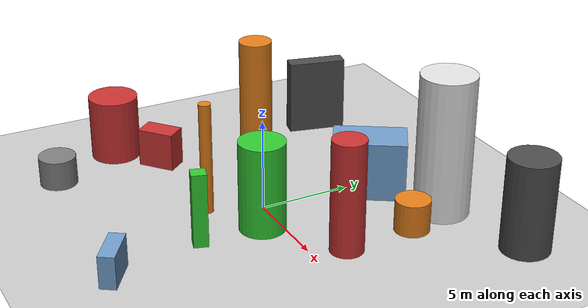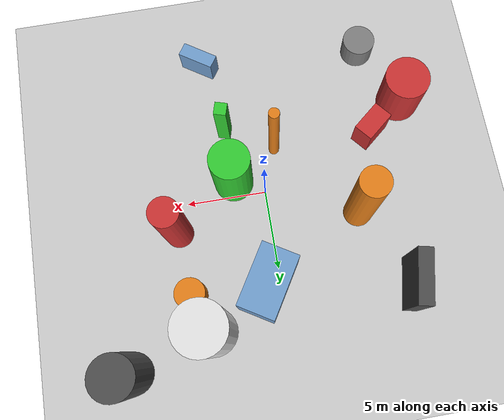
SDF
<?xml version='1.0'?>
<sdf version='1.6'>
  <world name='default'>
    <!-- Sun light -->
    <light name='sun' type='directional'>
      <cast_shadows>1</cast_shadows>
      <pose>0 0 10 0 0 0</pose>
      <diffuse>0.8 0.8 0.8 1</diffuse>
      <specular>0.2 0.2 0.2 1</specular>
      <attenuation>
        <range>1000</range>
        <constant>0.9</constant>
        <linear>0.01</linear>
        <quadratic>0.001</quadratic>
      </attenuation>
      <direction>-0.5 0.1 -0.9</direction>
    </light>

    <!-- Ground plane -->
    <model name='ground_plane'>
      <static>1</static>
      <link name='link'>
        <collision name='collision'>
          <geometry>
            <plane>
              <normal>0 0 1</normal>
              <size>100 100</size>
            </plane>
          </geometry>
          <surface>
            <contact>
              <collide_bitmask>65535</collide_bitmask>
              <ode/>
            </contact>
            <friction>
              <ode>
                <mu>100</mu>
                <mu2>50</mu2>
              </ode>
              <torsional><ode/></torsional>
            </friction>
            <bounce/>
          </surface>
          <max_contacts>10</max_contacts>
        </collision>
        <visual name='visual'>
          <cast_shadows>0</cast_shadows>
          <geometry>
            <plane>
              <normal>0 0 1</normal>
              <size>100 100</size>
            </plane>
          </geometry>
          <material>
            <script>
              <uri>file://media/materials/scripts/gazebo.material</uri>
              <n>Gazebo/Grey</n>
            </script>
          </material>
        </visual>
      </link>
    </model>

    <!-- Environment -->
    <magnetic_field>6e-06 2.3e-05 -4.2e-05</magnetic_field>
    <atmosphere type='adiabatic'/>
    <physics name='default_physics' default='0' type='ode'>
      <gravity>0 0 -9.8</gravity>
      <max_step_size>0.004</max_step_size>
      <real_time_factor>1</real_time_factor>
      <real_time_update_rate>250</real_time_update_rate>
    </physics>
    <scene>
      <ambient>0.4 0.4 0.4 1</ambient>
      <background>0.7 0.7 0.7 1</background>
      <shadows>1</shadows>
    </scene>
    <wind/>
    <spherical_coordinates>
      <surface_model>EARTH_WGS84</surface_model>
      <latitude_deg>0</latitude_deg>
      <longitude_deg>0</longitude_deg>
      <elevation>0</elevation>
      <heading_deg>0</heading_deg>
    </spherical_coordinates>

    <!-- ============ OBSTACLES (14) ============ -->
    <model name='obs_00'>
      <static>1</static>
      <link name='link'>
        <visual name='visual'>
          <geometry>
            <cylinder>
              <radius>0.9386</radius>
              <length>1.7557</length>
            </cylinder>
          </geometry>
          <material>
            <script>
              <n>Gazebo/Orange</n>
              <uri>file://media/materials/scripts/gazebo.material</uri>
            </script>
            <ambient>0.9 0.5 0.1 1</ambient>
          </material>
        </visual>
        <collision name='collision'>
          <geometry>
            <cylinder>
              <radius>0.9386</radius>
              <length>1.7557</length>
            </cylinder>
          </geometry>
          <max_contacts>10</max_contacts>
          <surface>
            <contact><ode/></contact>
            <bounce/>
            <friction>
              <ode><mu>1</mu><mu2>1</mu2></ode>
              <torsional><ode/></torsional>
            </friction>
          </surface>
        </collision>
      </link>
      <pose>5.4874 5.7729 0.8779 0 0 2.6619</pose>
    </model>

    <model name='obs_01'>
      <static>1</static>
      <link name='link'>
        <visual name='visual'>
          <geometry>
            <box>
              <size>0.7572 0.7828 4.0415</size>
            </box>
          </geometry>
          <material>
            <script>
              <n>Gazebo/Green</n>
              <uri>file://media/materials/scripts/gazebo.material</uri>
            </script>
            <ambient>0.2 0.8 0.2 1</ambient>
          </material>
        </visual>
        <collision name='collision'>
          <geometry>
            <box>
              <size>0.7572 0.7828 4.0415</size>
            </box>
          </geometry>
          <max_contacts>10</max_contacts>
          <surface>
            <contact><ode/></contact>
            <bounce/>
            <friction>
              <ode><mu>1</mu><mu2>1</mu2></ode>
              <torsional><ode/></torsional>
            </friction>
          </surface>
        </collision>
      </link>
      <pose>1.9196 -4.4545 2.0207 0 0 2.8579</pose>
    </model>

    <model name='obs_02'>
      <static>1</static>
      <link name='link'>
        <visual name='visual'>
          <geometry>
            <cylinder>
              <radius>1.3050</radius>
              <length>5.0976</length>
            </cylinder>
          </geometry>
          <material>
            <script>
              <n>Gazebo/DarkGrey</n>
              <uri>file://media/materials/scripts/gazebo.material</uri>
            </script>
            <ambient>0.3 0.3 0.3 1</ambient>
          </material>
        </visual>
        <collision name='collision'>
          <geometry>
            <cylinder>
              <radius>1.3050</radius>
              <length>5.0976</length>
            </cylinder>
          </geometry>
          <max_contacts>10</max_contacts>
          <surface>
            <contact><ode/></contact>
            <bounce/>
            <friction>
              <ode><mu>1</mu><mu2>1</mu2></ode>
              <torsional><ode/></torsional>
            </friction>
          </surface>
        </collision>
      </link>
      <pose>9.6806 9.7505 2.5488 0 0 0.3964</pose>
    </model>

    <model name='obs_03'>
      <static>1</static>
      <link name='link'>
        <visual name='visual'>
          <geometry>
            <box>
              <size>3.9812 2.3569 3.2686</size>
            </box>
          </geometry>
          <material>
            <script>
              <n>Gazebo/Blue</n>
              <uri>file://media/materials/scripts/gazebo.material</uri>
            </script>
            <ambient>0.447 0.624 0.812 1</ambient>
          </material>
        </visual>
        <collision name='collision'>
          <geometry>
            <box>
              <size>3.9812 2.3569 3.2686</size>
            </box>
          </geometry>
          <max_contacts>10</max_contacts>
          <surface>
            <contact><ode/></contact>
            <bounce/>
            <friction>
              <ode><mu>1</mu><mu2>1</mu2></ode>
              <torsional><ode/></torsional>
            </friction>
          </surface>
        </collision>
      </link>
      <pose>0.8043 5.9703 1.6343 0 0 1.0216</pose>
    </model>

    <model name='obs_04'>
      <static>1</static>
      <link name='link'>
        <visual name='visual'>
          <geometry>
            <box>
              <size>3.2758 0.9004 4.2736</size>
            </box>
          </geometry>
          <material>
            <script>
              <n>Gazebo/DarkGrey</n>
              <uri>file://media/materials/scripts/gazebo.material</uri>
            </script>
            <ambient>0.3 0.3 0.3 1</ambient>
          </material>
        </visual>
        <collision name='collision'>
          <geometry>
            <box>
              <size>3.2758 0.9004 4.2736</size>
            </box>
          </geometry>
          <max_contacts>10</max_contacts>
          <surface>
            <contact><ode/></contact>
            <bounce/>
            <friction>
              <ode><mu>1</mu><mu2>1</mu2></ode>
              <torsional><ode/></torsional>
            </friction>
          </surface>
        </collision>
      </link>
      <pose>-7.8015 7.3290 2.1368 0 0 1.3515</pose>
    </model>

    <model name='obs_05'>
      <static>1</static>
      <link name='link'>
        <visual name='visual'>
          <geometry>
            <box>
              <size>1.2526 2.0804 2.1425</size>
            </box>
          </geometry>
          <material>
            <script>
              <n>Gazebo/Red</n>
              <uri>file://media/materials/scripts/gazebo.material</uri>
            </script>
            <ambient>0.8 0.2 0.2 1</ambient>
          </material>
        </visual>
        <collision name='collision'>
          <geometry>
            <box>
              <size>1.2526 2.0804 2.1425</size>
            </box>
          </geometry>
          <max_contacts>10</max_contacts>
          <surface>
            <contact><ode/></contact>
            <bounce/>
            <friction>
              <ode><mu>1</mu><mu2>1</mu2></ode>
              <torsional><ode/></torsional>
            </friction>
          </surface>
        </collision>
      </link>
      <pose>-7.3639 -2.8352 1.0712 0 0 2.2646</pose>
    </model>

    <model name='obs_06'>
      <static>1</static>
      <link name='link'>
        <visual name='visual'>
          <geometry>
            <cylinder>
              <radius>0.8877</radius>
              <length>6.1073</length>
            </cylinder>
          </geometry>
          <material>
            <script>
              <n>Gazebo/Red</n>
              <uri>file://media/materials/scripts/gazebo.material</uri>
            </script>
            <ambient>0.8 0.2 0.2 1</ambient>
          </material>
        </visual>
        <collision name='collision'>
          <geometry>
            <cylinder>
              <radius>0.8877</radius>
              <length>6.1073</length>
            </cylinder>
          </geometry>
          <max_contacts>10</max_contacts>
          <surface>
            <contact><ode/></contact>
            <bounce/>
            <friction>
              <ode><mu>1</mu><mu2>1</mu2></ode>
              <torsional><ode/></torsional>
            </friction>
          </surface>
        </collision>
      </link>
      <pose>5.7686 1.7771 3.0536 0 0 2.5994</pose>
    </model>

    <model name='obs_07'>
      <static>1</static>
      <link name='link'>
        <visual name='visual'>
          <geometry>
            <cylinder>
              <radius>1.3804</radius>
              <length>3.6201</length>
            </cylinder>
          </geometry>
          <material>
            <script>
              <n>Gazebo/Red</n>
              <uri>file://media/materials/scripts/gazebo.material</uri>
            </script>
            <ambient>0.8 0.2 0.2 1</ambient>
          </material>
        </visual>
        <collision name='collision'>
          <geometry>
            <cylinder>
              <radius>1.3804</radius>
              <length>3.6201</length>
            </cylinder>
          </geometry>
          <max_contacts>10</max_contacts>
          <surface>
            <contact><ode/></contact>
            <bounce/>
            <friction>
              <ode><mu>1</mu><mu2>1</mu2></ode>
              <torsional><ode/></torsional>
            </friction>
          </surface>
        </collision>
      </link>
      <pose>-9.6844 -4.6926 1.8101 0 0 1.3407</pose>
    </model>

    <model name='obs_08'>
      <static>1</static>
      <link name='link'>
        <visual name='visual'>
          <geometry>
            <cylinder>
              <radius>1.0274</radius>
              <length>1.6386</length>
            </cylinder>
          </geometry>
          <material>
            <script>
              <n>Gazebo/Grey</n>
              <uri>file://media/materials/scripts/gazebo.material</uri>
            </script>
            <ambient>0.5 0.5 0.5 1</ambient>
          </material>
        </visual>
        <collision name='collision'>
          <geometry>
            <cylinder>
              <radius>1.0274</radius>
              <length>1.6386</length>
            </cylinder>
          </geometry>
          <max_contacts>10</max_contacts>
          <surface>
            <contact><ode/></contact>
            <bounce/>
            <friction>
              <ode><mu>1</mu><mu2>1</mu2></ode>
              <torsional><ode/></torsional>
            </friction>
          </surface>
        </collision>
      </link>
      <pose>-7.7270 -8.7288 0.8193 0 0 2.1577</pose>
    </model>

    <model name='obs_09'>
      <static>1</static>
      <link name='link'>
        <visual name='visual'>
          <geometry>
            <cylinder>
              <radius>0.3286</radius>
              <length>6.1716</length>
            </cylinder>
          </geometry>
          <material>
            <script>
              <n>Gazebo/Orange</n>
              <uri>file://media/materials/scripts/gazebo.material</uri>
            </script>
            <ambient>0.9 0.5 0.1 1</ambient>
          </material>
        </visual>
        <collision name='collision'>
          <geometry>
            <cylinder>
              <radius>0.3286</radius>
              <length>6.1716</length>
            </cylinder>
          </geometry>
          <max_contacts>10</max_contacts>
          <surface>
            <contact><ode/></contact>
            <bounce/>
            <friction>
              <ode><mu>1</mu><mu2>1</mu2></ode>
              <torsional><ode/></torsional>
            </friction>
          </surface>
        </collision>
      </link>
      <pose>-1.0345 -2.7592 3.0858 0 0 0.2929</pose>
    </model>

    <model name='obs_10'>
      <static>1</static>
      <link name='link'>
        <visual name='visual'>
          <geometry>
            <cylinder>
              <radius>1.2350</radius>
              <length>4.9311</length>
            </cylinder>
          </geometry>
          <material>
            <script>
              <n>Gazebo/Green</n>
              <uri>file://media/materials/scripts/gazebo.material</uri>
            </script>
            <ambient>0.2 0.8 0.2 1</ambient>
          </material>
        </visual>
        <collision name='collision'>
          <geometry>
            <cylinder>
              <radius>1.2350</radius>
              <length>4.9311</length>
            </cylinder>
          </geometry>
          <max_contacts>10</max_contacts>
          <surface>
            <contact><ode/></contact>
            <bounce/>
            <friction>
              <ode><mu>1</mu><mu2>1</mu2></ode>
              <torsional><ode/></torsional>
            </friction>
          </surface>
        </collision>
      </link>
      <pose>1.8733 -0.9599 2.4656 0 0 1.7479</pose>
    </model>

    <model name='obs_11'>
      <static>1</static>
      <link name='link'>
        <visual name='visual'>
          <geometry>
            <cylinder>
              <radius>0.9100</radius>
              <length>7.1153</length>
            </cylinder>
          </geometry>
          <material>
            <script>
              <n>Gazebo/Orange</n>
              <uri>file://media/materials/scripts/gazebo.material</uri>
            </script>
            <ambient>0.9 0.5 0.1 1</ambient>
          </material>
        </visual>
        <collision name='collision'>
          <geometry>
            <cylinder>
              <radius>0.9100</radius>
              <length>7.1153</length>
            </cylinder>
          </geometry>
          <max_contacts>10</max_contacts>
          <surface>
            <contact><ode/></contact>
            <bounce/>
            <friction>
              <ode><mu>1</mu><mu2>1</mu2></ode>
              <torsional><ode/></torsional>
            </friction>
          </surface>
        </collision>
      </link>
      <pose>-5.5690 2.3021 3.5576 0 0 2.1049</pose>
    </model>

    <model name='obs_12'>
      <static>1</static>
      <link name='link'>
        <visual name='visual'>
          <geometry>
            <cylinder>
              <radius>1.4840</radius>
              <length>7.7788</length>
            </cylinder>
          </geometry>
          <material>
            <script>
              <n>Gazebo/White</n>
              <uri>file://media/materials/scripts/gazebo.material</uri>
            </script>
            <ambient>0.9 0.9 0.9 1</ambient>
          </material>
        </visual>
        <collision name='collision'>
          <geometry>
            <cylinder>
              <radius>1.4840</radius>
              <length>7.7788</length>
            </cylinder>
          </geometry>
          <max_contacts>10</max_contacts>
          <surface>
            <contact><ode/></contact>
            <bounce/>
            <friction>
              <ode><mu>1</mu><mu2>1</mu2></ode>
              <torsional><ode/></torsional>
            </friction>
          </surface>
        </collision>
      </link>
      <pose>4.5449 8.1750 3.8894 0 0 2.7272</pose>
    </model>

    <model name='obs_13'>
      <static>1</static>
      <link name='link'>
        <visual name='visual'>
          <geometry>
            <box>
              <size>0.8626 2.2759 1.7737</size>
            </box>
          </geometry>
          <material>
            <script>
              <n>Gazebo/Blue</n>
              <uri>file://media/materials/scripts/gazebo.material</uri>
            </script>
            <ambient>0.447 0.624 0.812 1</ambient>
          </material>
        </visual>
        <collision name='collision'>
          <geometry>
            <box>
              <size>0.8626 2.2759 1.7737</size>
            </box>
          </geometry>
          <max_contacts>10</max_contacts>
          <surface>
            <contact><ode/></contact>
            <bounce/>
            <friction>
              <ode><mu>1</mu><mu2>1</mu2></ode>
              <torsional><ode/></torsional>
            </friction>
          </surface>
        </collision>
      </link>
      <pose>2.8668 -9.3770 0.8868 0 0 0.9816</pose>
    </model>

    <!-- GUI camera -->
    <gui fullscreen='0'>
      <camera name='user_camera'>
        <pose>-15 0 18 0 0.85 0.15</pose>
        <view_controller>orbit</view_controller>
        <projection_type>perspective</projection_type>
      </camera>
    </gui>
  </world>
</sdf>
